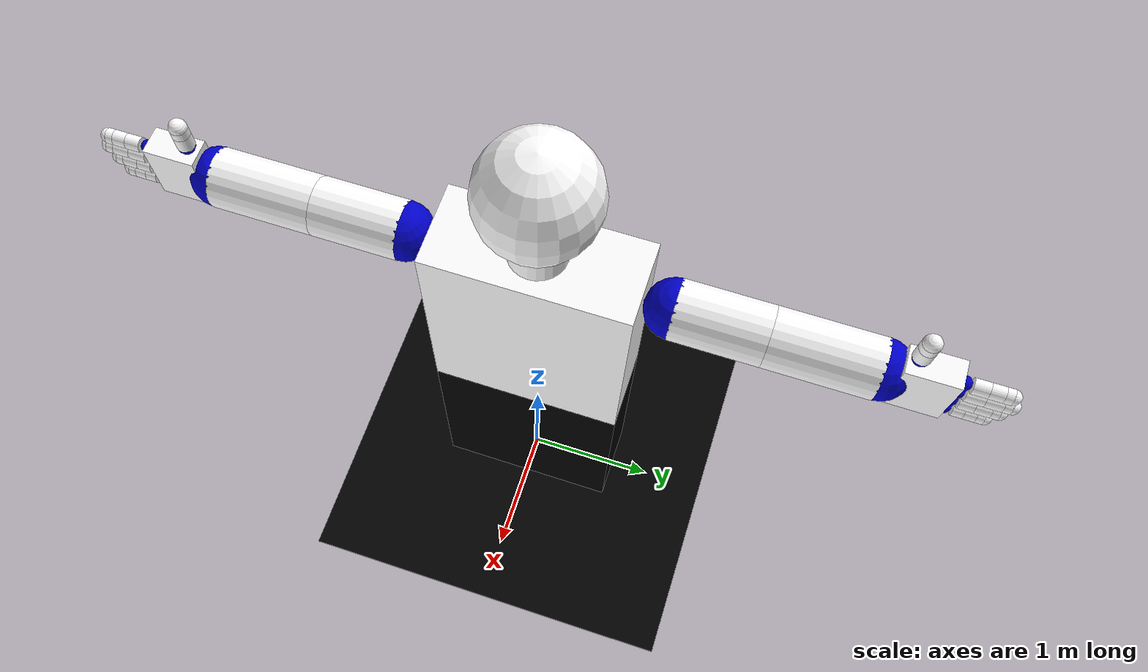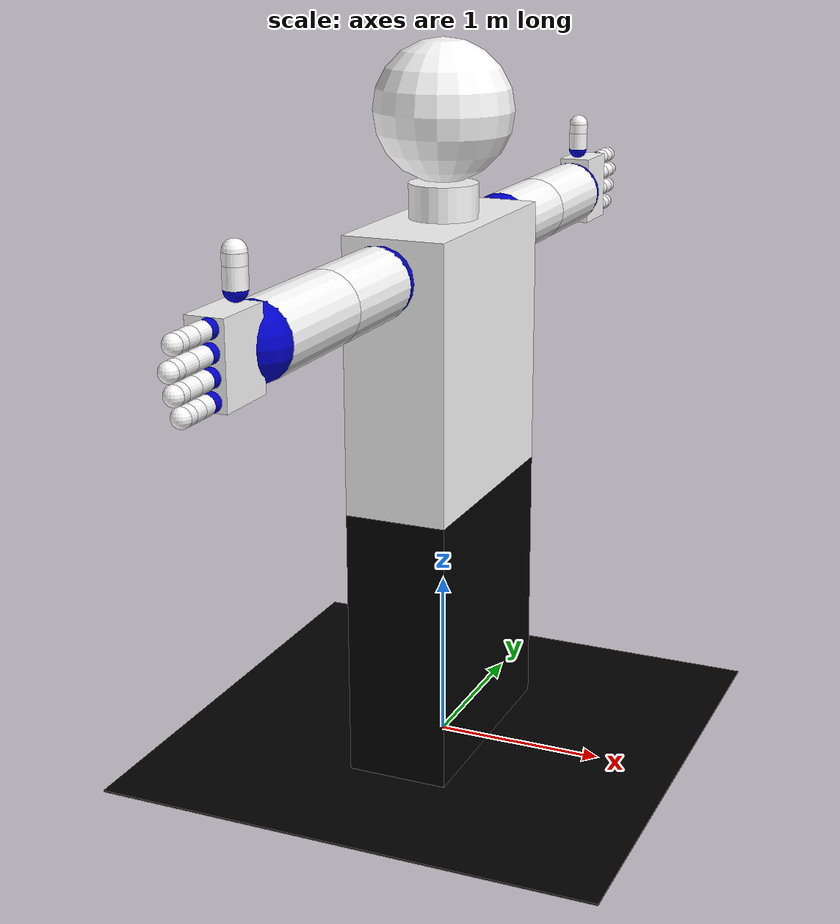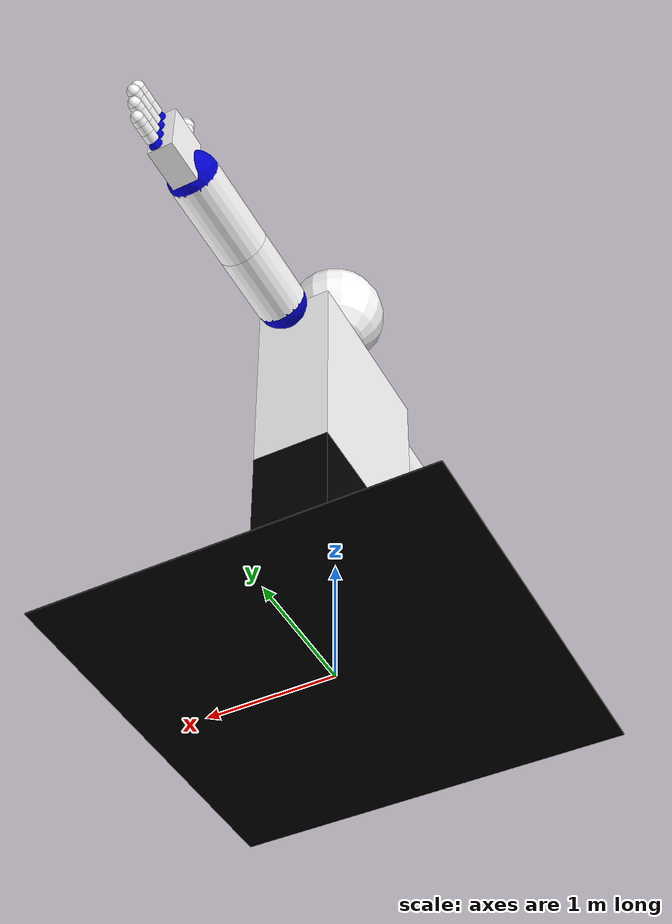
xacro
<?xml version="1.0"?>

<robot name="signbot_full" xmlns:xacro="http://www.ros.org/wiki/xacro" >
	<xacro:include filename="$(find signbot_description)/urdf/signbot_full_macros.xacro" />

<!-- /////////		MODEL		////////////////////////// -->
<!-- base link  This link is the base of the model -->
  <link name="base_link">

    <visual>
      <origin xyz="0 0 0" rpy="0 0 0" />
      <geometry>
	       <box size="3 3 0.01" />
      </geometry>
      <material name="Black" />
    </visual>

    <collision>
      <origin xyz="0 0 0" rpy="0 0 0" />
      <geometry>
	       <box size="3 3 0.01" />
      </geometry>
      </collision>
  </link>

  <gazebo reference="base_link">
    <material>Gazebo/Black</material>
  </gazebo>

 <joint name="bottom_joint" type="fixed">
    <origin xyz="0 0 0" rpy="0 0 0" />
    <parent link="base_link"/>
    <child link="legs_link"/>
  </joint>
<!-- legs -->
  <link name="legs_link">

    <visual>
      <origin xyz="0 0 ${TORSO_HEIGHT/2}" rpy="0 0 0" />
      <geometry>
	       <box size="${TORSO_DEPTH} ${TORSO_LENGTH} ${TORSO_HEIGHT}" />
      </geometry>
      <material name="Black" />
    </visual>

    <collision>
      <origin xyz="0 0 ${TORSO_HEIGHT/2}" rpy="0 0 0" />
      <geometry>
	       <box size="${TORSO_DEPTH} ${TORSO_LENGTH} ${TORSO_HEIGHT}" />
      </geometry>
      </collision>
	<xacro:inertial_matrix mass="50"/>
  </link>

  <gazebo reference="legs_link">
    <material>Gazebo/Black</material>
  </gazebo>

<!-- torso LINK -->
  <xacro:link_shape name="torso_link" color="White">
	<origin xyz="0 0 ${TORSO_HEIGHT/2}" rpy="0 0 0" />
	<box size="${TORSO_DEPTH} ${TORSO_LENGTH} ${TORSO_HEIGHT}" />
  </xacro:link_shape>

  <gazebo reference="torso_link">
    <material>Gazebo/White</material>
  </gazebo>

 <joint name="waist_joint" type="fixed">
    <origin xyz="0 0 ${TORSO_HEIGHT}" rpy="0 0 0" />
    <parent link="legs_link"/>
    <child link="torso_link"/>
  </joint>

<!-- //////////////////	head	/////////////////// -->
<!-- neck -->
  <xacro:link_shape name="neck_link" color="White">
	<origin xyz="0 0 ${NECK_LENGTH/2}" rpy="0 0 0" />
	<cylinder radius="${NECK_RADIUS}" length="${NECK_LENGTH}"/>
  </xacro:link_shape>

  <gazebo reference="neck_link">
    <material>Gazebo/White</material>
  </gazebo>

 <joint name="neck_joint" type="fixed">
    <origin xyz="0 0 ${TORSO_HEIGHT}" rpy="0 0 0" />
    <parent link="torso_link"/>
    <child link="neck_link"/>
  </joint>

<!-- head  -->
  <xacro:link_shape name="head_link" color="White">
	<origin xyz="0 0 ${HEAD_RADIUS}" rpy="0 0 0" />
	<sphere radius="${HEAD_RADIUS}"/>
  </xacro:link_shape>

  <gazebo reference="head_link">
    <material>Gazebo/White</material>
  </gazebo>

 <joint name="head_joint" type="fixed">
    <origin xyz="0 0 ${NECK_LENGTH}" rpy="0 0 0" />
    <parent link="neck_link"/>
    <child link="head_link"/>
  </joint>

<!-- ////////////////// right side /////////////// -->
<!-- arm -->
  <xacro:arm side="r"
	     axis_y_signal="-1"
	     lower="0"
	     upper="1" />

<!-- hand -->
  <xacro:hand side="r"
	      axis_y_signal="-1" />
<!-- thumb -->
  <xacro:thumb_finger side="r"
		      axis_y_signal="-1"
		      lower="0"
		      upper="1" />

<!--	FOUR FINGERS	(INDEX, MIDDLE, THIRD, LITTLE)-->
  <xacro:generic_finger name= "index"
			side="r"
			axis_y_signal="-1"
		      	lower="0"
		     	upper="1"
			ref_point="${(PALM_LENGTH/2)-GENERIC_FINGERS_RADIUS}"
			bottom_length="${INDEX_BOTTOM_LENGTH}"
			middle_length="${INDEX_MIDDLE_LENGTH}"
			top_length="${INDEX_TOP_LENGTH}" />

  <xacro:generic_finger name= "middle"
			side="r"
			axis_y_signal="-1"
		      	lower="0"
		     	upper="1"
			ref_point="${(PALM_LENGTH/2)-GENERIC_FINGERS_RADIUS*3-INTERVAL_BETWEEN_FINGERS}"
			bottom_length="${MIDDLE_BOTTOM_LENGTH}"
			middle_length="${MIDDLE_MIDDLE_LENGTH}"
			top_length="${MIDDLE_TOP_LENGTH}" />

  <xacro:generic_finger name= "third"
			side="r"
			axis_y_signal="-1"
		      	lower="0"
		     	upper="1"
			ref_point="${(PALM_LENGTH/2)-GENERIC_FINGERS_RADIUS*5-INTERVAL_BETWEEN_FINGERS*2}"
			bottom_length="${THIRD_BOTTOM_LENGTH}"
			middle_length="${THIRD_MIDDLE_LENGTH}"
			top_length="${THIRD_TOP_LENGTH}" />

  <xacro:generic_finger name= "little"
			side="r"
			axis_y_signal="-1"
		      	lower="0"
		     	upper="1"
			ref_point="${(PALM_LENGTH/2)-GENERIC_FINGERS_RADIUS*7-INTERVAL_BETWEEN_FINGERS*3}"
			bottom_length="${LITTLE_BOTTOM_LENGTH}"
			middle_length="${LITTLE_MIDDLE_LENGTH}"
			top_length="${LITTLE_TOP_LENGTH}" />

<!-- ////////////////// left side /////////////// -->
<!-- arm -->
  <xacro:arm side="l"
	     axis_y_signal="1"
	     lower="1"
	     upper="0" />
<!-- hand -->
  <xacro:hand side="l"
	      axis_y_signal="1" />
<!-- thumb -->
  <xacro:thumb_finger side="l"
		      axis_y_signal="1"
		      lower="1"
		      upper="0" />
<!--	FOUR FINGERS	(INDEX, MIDDLE, THIRD, LITTLE) -->

  <xacro:generic_finger name= "index"
			side="l"
			axis_y_signal="1"
		      	lower="1"
		     	upper="0"
			ref_point="${(PALM_LENGTH/2)-GENERIC_FINGERS_RADIUS}"
			bottom_length="${INDEX_BOTTOM_LENGTH}"
			middle_length="${INDEX_MIDDLE_LENGTH}"
			top_length="${INDEX_TOP_LENGTH}" />

  <xacro:generic_finger name= "middle"
			side="l"
			axis_y_signal="1"
		      	lower="1"
		     	upper="0"
			ref_point="${(PALM_LENGTH/2)-GENERIC_FINGERS_RADIUS*3-INTERVAL_BETWEEN_FINGERS}"
			bottom_length="${MIDDLE_BOTTOM_LENGTH}"
			middle_length="${MIDDLE_MIDDLE_LENGTH}"
			top_length="${MIDDLE_TOP_LENGTH}" />

  <xacro:generic_finger name= "third"
			side="l"
			axis_y_signal="1"
		      	lower="1"
		     	upper="0"
			ref_point="${(PALM_LENGTH/2)-GENERIC_FINGERS_RADIUS*5-INTERVAL_BETWEEN_FINGERS*2}"
			bottom_length="${THIRD_BOTTOM_LENGTH}"
			middle_length="${THIRD_MIDDLE_LENGTH}"
			top_length="${THIRD_TOP_LENGTH}" />

  <xacro:generic_finger name= "little"
			side="l"
			axis_y_signal="1"
		      	lower="1"
		     	upper="0"
			ref_point="${(PALM_LENGTH/2)-GENERIC_FINGERS_RADIUS*7-INTERVAL_BETWEEN_FINGERS*3}"
			bottom_length="${LITTLE_BOTTOM_LENGTH}"
			middle_length="${LITTLE_MIDDLE_LENGTH}"
			top_length="${LITTLE_TOP_LENGTH}" />

<!-- /////////////////	END MODEL	//////////////////////// -->

</robot>

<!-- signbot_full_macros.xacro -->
<robot xmlns:xacro="http://www.ros.org/wiki/xacro">
<xacro:include filename="$(find signbot_description)/urdf/signbot_generic_macros.xacro" />

<!-- Constants -->
  <property name="TOLERANCE" value="0.001" />
<!-- arm link properties -->
  <property name="ARM_RADIUS" value="0.2" />
  <property name="ARM_TOP_LENGTH" value="0.6" />
  <property name="ARM_BOTTOM_LENGTH" value="0.7" />
<!-- wrist link properties -->
  <property name="WRIST_RADIUS" value="${ARM_RADIUS}" />
<!-- palm link properties -->
  <property name="PALM_DEPTH" value="${WRIST_RADIUS}" />
  <property name="PALM_LENGTH" value="0.43"/>
  <property name="PALM_HEIGHT" value="0.35"/>
<!-- thumb finger properties -->
  <property name="THUMB_RADIUS" value="0.06" />
  <property name="THUMB_BOTTOM_LENGTH" value="0.11" />
  <property name="THUMB_TOP_LENGTH" value="${THUMB_RADIUS}" />
<!-- generic fingers properties -->
  <property name="GENERIC_FINGERS_RADIUS" value="0.05" />
  <property name="GENERIC_FINGERS_X" value="0.027" />
  <property name="INTERVAL_BETWEEN_FINGERS" value="0.01" />
<!-- index finger properties -->
  <property name="INDEX_BOTTOM_LENGTH" value="0.1" />
  <property name="INDEX_MIDDLE_LENGTH" value="0.09" />
  <property name="INDEX_TOP_LENGTH" value="${GENERIC_FINGERS_RADIUS}" />
<!--  middle finger properties  -->
  <property name="MIDDLE_BOTTOM_LENGTH" value="0.12" />
  <property name="MIDDLE_MIDDLE_LENGTH" value="0.11" />
  <property name="MIDDLE_TOP_LENGTH" value="${GENERIC_FINGERS_RADIUS}" />
<!--  third finger properties  -->
  <property name="THIRD_BOTTOM_LENGTH" value="0.1" />
  <property name="THIRD_MIDDLE_LENGTH" value="0.1" />
  <property name="THIRD_TOP_LENGTH" value="${GENERIC_FINGERS_RADIUS}" />
<!--  little finger properties  -->
  <property name="LITTLE_BOTTOM_LENGTH" value="0.075" />
  <property name="LITTLE_MIDDLE_LENGTH" value="0.075" />
  <property name="LITTLE_TOP_LENGTH" value="${GENERIC_FINGERS_RADIUS}" />

<!-- 	//////////////////	ARMS		/////////////////// -->
<xacro:macro name="arm" params="side axis_y_signal lower upper">

  <!-- SHOULDER PAN LINK -->
  <xacro:link_shape name="${side}_shoulder_link" color="Blue">
	<origin xyz="0 0 0" rpy="0 0 0" />
	<sphere radius="${ARM_RADIUS}"/>
  </xacro:link_shape>

  <gazebo reference="${side}_shoulder_link">
    <material>Gazebo/Blue</material>
  </gazebo>

  <joint name="${side}_shoulder_joint" type="revolute">
    <parent link="torso_link"/>
    <child link="${side}_shoulder_link"/>
    <origin xyz="0 ${axis_y_signal*((TORSO_LENGTH/2)+ARM_RADIUS)} ${TORSO_HEIGHT-ARM_RADIUS}"/>
    <axis xyz="0 1 0"/>
    <limit effort="1000.0" lower="-${PI/2}" upper="${PI/2}" velocity="0.5"/>
    <dynamics damping="50" friction="1"/>
  </joint>

<!-- TOP ARM  -->
  <xacro:link_shape name="${side}_top_arm_link" color="White">
	<origin rpy="${PI/2} 0 0" xyz="0 ${axis_y_signal*(ARM_TOP_LENGTH/2)} 0"/>
	<cylinder radius="${ARM_RADIUS}" length="${ARM_TOP_LENGTH}"/>
  </xacro:link_shape>

  <gazebo reference="${side}_top_arm_link">
    <material>Gazebo/White</material>
  </gazebo>

  <joint name="${side}_top_arm_joint" type="revolute">
    <parent link="${side}_shoulder_link"/>
    <child link="${side}_top_arm_link"/>
    <origin xyz="0 0 0"/>
    <axis xyz="0 0 1"/>
    <limit effort="1000.0" lower="${lower*(-1*(PI/2))}" upper="${upper*(PI/2)}" velocity="0.5"/>
    <dynamics damping="50" friction="1"/>
  </joint>

<!-- bottom arm -->
  <xacro:link_shape name="${side}_bottom_arm_link" color="White">
	 <origin rpy="${PI/2} 0 0" xyz="-${ARM_RADIUS} ${axis_y_signal*(ARM_BOTTOM_LENGTH/2)} 0"/>
	 <cylinder radius="${ARM_RADIUS}" length="${ARM_BOTTOM_LENGTH}"/>
  </xacro:link_shape>

  <gazebo reference="${side}_bottom_arm_link">
    <material>Gazebo/White</material>
  </gazebo>

  <joint name="${side}_elbow_joint" type="revolute">
    <parent link="${side}_top_arm_link"/>
    <child link="${side}_bottom_arm_link"/>
    <origin xyz="${ARM_RADIUS} ${axis_y_signal*(ARM_TOP_LENGTH)} 0"/>
    <axis xyz="0 0 1"/>
    <limit effort="1000.0" lower="${lower*(-1)*(PI-0.4)}" upper="${upper*(PI-0.4)}" velocity="0.5"/>
    <dynamics damping="50" friction="1"/>
  </joint>

<!--///	TRANSMICION ROS CONTROL	/// -->
	<xacro:transmission_block joint_name="${side}_shoulder_joint"/>
	<xacro:transmission_block joint_name="${side}_top_arm_joint"/>
	<xacro:transmission_block joint_name="${side}_elbow_joint"/>

</xacro:macro>

<!--	//////////////////////	HANDS	//////////////////////// -->
<xacro:macro name="hand" params="side axis_y_signal">
<!-- wirst -->
  <xacro:link_shape name="${side}_wirst_l" color="Blue">
	<origin xyz="0 0 0" rpy="0 0 0" />
	<sphere radius="${WRIST_RADIUS}"/>
  </xacro:link_shape>

  <gazebo reference="${side}_wirst_l">
    <material>Gazebo/Blue</material>
  </gazebo>

  <joint name="${side}_wirst_j" type="revolute">
    <parent link="${side}_bottom_arm_link"/>
    <child link="${side}_wirst_l"/>
    <origin xyz="-${ARM_RADIUS} ${axis_y_signal*ARM_BOTTOM_LENGTH} 0"/>
    <axis xyz="1 0 0"/>
    <limit effort="1000.0" lower="-${PI/4}" upper="${PI/4}" velocity="0.5"/>
    <dynamics damping="50" friction="1"/>
  </joint>

<!-- PALM LINK -->
  <xacro:link_shape name="${side}_palm_l" color="White">
	<origin rpy="${PI/2} 0 0" xyz="0 ${axis_y_signal*0.17} 0 "/>
	<box size="${PALM_DEPTH} ${PALM_LENGTH} ${PALM_HEIGHT}"/>
  </xacro:link_shape>

  <gazebo reference="${side}_palm_l">
    <material>Gazebo/White</material>
  </gazebo>

  <joint name="${side}_upper_wirst_j" type="revolute">
    <parent link="${side}_wirst_l"/>
    <child link="${side}_palm_l"/>
    <origin xyz="0 ${axis_y_signal*0.10} 0"/>
    <axis xyz="0 0 1"/>
    <limit effort="1000.0" lower="-${PI/4}" upper="${PI/4}" velocity="0.5"/>
    <dynamics damping="50" friction="1"/>
  </joint>

<!--///	TRANSMICION ROS CONTROL	/// -->
   <xacro:transmission_block joint_name="${side}_wirst_j"/>
   <xacro:transmission_block joint_name="${side}_upper_wirst_j"/>

</xacro:macro>

<!--	///////		THUMB FINGER	///////	-->
<xacro:macro name="thumb_finger" params="side axis_y_signal lower upper ">
    <xacro:link_shape name="${side}_knuckle_bottom_thumb_l" color="Blue">
	<origin rpy="0 0 0" xyz="0 0 0"/>
	<sphere radius="${THUMB_RADIUS}" />
    </xacro:link_shape>

    <gazebo reference="${side}_knuckle_bottom_thumb_l">
      <material>Gazebo/Blue</material>
    </gazebo>

    <joint name="${side}_knuckle_bottom_thumb_j" type="revolute">
        <parent link="${side}_palm_l"/>
        <child link="${side}_knuckle_bottom_thumb_l"/>
        <origin xyz="0 ${axis_y_signal*THUMB_RADIUS} ${(PALM_LENGTH/2)+THUMB_RADIUS+TOLERANCE}" />
	<axis xyz="1 0 0"/>
	<limit effort="1000.0" lower="-${lower*(PI/2)}" upper="${upper*(PI/2)}" velocity="0.5"/>
	<dynamics damping="50" friction="1"/>
    </joint>

    <xacro:link_shape name="${side}_bottom_thumb_l" color="White">
	<origin rpy="0 0 0" xyz="0 0 ${THUMB_BOTTOM_LENGTH/2}"/>
	<cylinder radius="${THUMB_RADIUS}" length="${THUMB_BOTTOM_LENGTH}"/>
    </xacro:link_shape>

    <gazebo reference="${side}_bottom_thumb_l">
      <material>Gazebo/White</material>
    </gazebo>

    <joint name="${side}_knuckle_upper_thumb_j" type="revolute">
        <parent link="${side}_knuckle_bottom_thumb_l"/>
        <child link="${side}_bottom_thumb_l"/>
    	<origin xyz="0 0 0"/>
    	<axis xyz="0 1 0"/>
    	<limit effort="1000.0" lower="0" upper="${PI/2}" velocity="0.5"/>
    	<dynamics damping="50" friction="1"/>
    </joint>

    <xacro:link_shape name="${side}_middle_thumb_l" color="White">
	<origin rpy="0 0 0" xyz="0 ${-1*axis_y_signal*THUMB_RADIUS} ${THUMB_TOP_LENGTH/2}"/>
	<cylinder radius="${THUMB_RADIUS}" length="${THUMB_TOP_LENGTH}"/>
    </xacro:link_shape>

    <gazebo reference="${side}_middle_thumb_l">
      <material>Gazebo/White</material>
    </gazebo>

    <joint name="${side}_middle_thumb_j" type="revolute">
        <parent link="${side}_bottom_thumb_l"/>
        <child link="${side}_middle_thumb_l"/>
    	<origin xyz="0 ${axis_y_signal*THUMB_RADIUS} ${THUMB_BOTTOM_LENGTH}"/>
    	<axis xyz="1 0 0"/>
    	<limit effort="1000.0" lower="-${lower*(PI/2)}" upper="${upper*(PI/2)}" velocity="0.5"/>
    	<dynamics damping="50" friction="1"/>
    </joint>

    <xacro:link_shape name="${side}_top_thumb_l" color="White">
	<origin rpy="0 0 0" xyz="0 0 0"/>
	<sphere radius="${THUMB_RADIUS}"/>
    </xacro:link_shape>

    <gazebo reference="${side}_top_thumb_l">
      <material>Gazebo/White</material>
    </gazebo>

    <joint name="${side}_top_thumb_j" type="fixed">
        <parent link="${side}_middle_thumb_l"/>
        <child link="${side}_top_thumb_l"/>
    	<origin xyz="0 ${-1*axis_y_signal*0.06} 0.06"/>
    </joint>

<!--///	TRANSMICION ROS CONTROL	/// -->
   <xacro:transmission_block joint_name="${side}_knuckle_bottom_thumb_j"/>
   <xacro:transmission_block joint_name="${side}_knuckle_upper_thumb_j"/>
   <xacro:transmission_block joint_name="${side}_middle_thumb_j"/>

</xacro:macro>

<xacro:macro name="generic_finger"
	params="name side axis_y_signal lower upper ref_point bottom_length middle_length top_length">
    <xacro:link_shape name="${side}_knuckle_bottom_${name}_l" color="Blue">
	<origin rpy="0 0 0" xyz="0 0 0"/>
	<sphere radius="${GENERIC_FINGERS_RADIUS}" />
    </xacro:link_shape>

    <gazebo reference="${side}_knuckle_bottom_${name}_l">
      <material>Gazebo/Blue</material>
    </gazebo>

    <joint name="${side}_knuckle_bottom_${name}_j" type="revolute">
        <parent link="${side}_palm_l"/>
        <child link="${side}_knuckle_bottom_${name}_l"/>
        <origin xyz="${GENERIC_FINGERS_X} ${axis_y_signal*PALM_HEIGHT} ${ref_point}"/>
    	<axis xyz="0 0 1"/>
    	<limit effort="1000.0" lower="-${lower*(PI/2)}" upper="${upper*(PI/2)}" velocity="0.5"/>
    	<dynamics damping="50" friction="1"/>
    </joint>

    <xacro:link_shape name="${side}_bottom_${name}_l" color="White">
	<origin rpy="${PI/2} 0 0" xyz="0 ${axis_y_signal*(bottom_length/2)} 0"/>
	<cylinder radius="${GENERIC_FINGERS_RADIUS}" length="${bottom_length}"/>
    </xacro:link_shape>

    <gazebo reference="${side}_bottom_${name}_l">
      <material>Gazebo/White</material>
    </gazebo>

    <joint name="${side}_knuckle_upper_${name}_j" type="fixed">
        <parent link="${side}_knuckle_bottom_${name}_l"/>
        <child link="${side}_bottom_${name}_l"/>
    	<origin xyz="0 ${axis_y_signal*GENERIC_FINGERS_RADIUS} 0"/>
    </joint>

    <xacro:link_shape name="${side}_middle_${name}_l" color="White">
	<origin rpy="${PI/2} 0 0" xyz="-${GENERIC_FINGERS_RADIUS} ${axis_y_signal*middle_length/2} 0"/>
	<cylinder radius="${GENERIC_FINGERS_RADIUS}" length="${middle_length}"/>
    </xacro:link_shape>

    <gazebo reference="${side}_middle_${name}_l">
      <material>Gazebo/White</material>
    </gazebo>

    <joint name="${side}_middle_${name}_j" type="revolute">
        <parent link="${side}_bottom_${name}_l"/>
        <child link="${side}_middle_${name}_l"/>
    	<origin xyz="${GENERIC_FINGERS_RADIUS} ${axis_y_signal*bottom_length} 0"/>
    	<axis xyz="0 0 1"/>
    <limit effort="1000.0" lower="-${lower*(PI/2)}" upper="${upper*(PI/2)}" velocity="0.5"/>
    <dynamics damping="50" friction="1"/>
    </joint>

    <xacro:link_shape name="${side}_top_${name}_l" color="White">
	<origin rpy="${PI/2} 0 0" xyz="-${GENERIC_FINGERS_RADIUS} ${axis_y_signal*(top_length/2)} 0"/>
	<cylinder radius="${GENERIC_FINGERS_RADIUS}" length="${top_length}"/>
    </xacro:link_shape>

    <gazebo reference="${side}_top_${name}_l">
      <material>Gazebo/White</material>
    </gazebo>

    <joint name="${side}_top_${name}_j" type="revolute">
        <parent link="${side}_middle_${name}_l"/>
        <child link="${side}_top_${name}_l"/>
    	<origin xyz="0 ${axis_y_signal*middle_length} 0"/>
    	<axis xyz="0 0 1"/>
   	<limit effort="1000.0" lower="-${lower*(PI/2)}" upper="${upper*(PI/2)}" velocity="0.5"/>
    	<dynamics damping="50" friction="1"/>
    </joint>

    <xacro:link_shape name="${side}_toptop_${name}_l" color="White">
	<origin rpy="0 0 0" xyz="0 0 0"/>
	<sphere radius="${GENERIC_FINGERS_RADIUS}"/>
    </xacro:link_shape>

    <gazebo reference="${side}_toptop_${name}_l">
      <material>Gazebo/White</material>
    </gazebo>

    <joint name="${side}_toptop_${name}_j" type="fixed">
        <parent link="${side}_top_${name}_l"/>
        <child link="${side}_toptop_${name}_l"/>
    	<origin xyz="-${GENERIC_FINGERS_RADIUS} ${axis_y_signal*GENERIC_FINGERS_RADIUS} 0"/>
    </joint>

<!--///	TRANSMICION ROS CONTROL	/// -->
   <xacro:transmission_block joint_name="${side}_knuckle_bottom_${name}_j"/>
   <xacro:transmission_block joint_name="${side}_middle_${name}_j"/>
   <xacro:transmission_block joint_name="${side}_top_${name}_j"/>

</xacro:macro>

</robot>

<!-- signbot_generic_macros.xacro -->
<robot xmlns:xacro="http://www.ros.org/wiki/xacro">

<!-- COLORS -->
    <material name="Black">
        <color rgba="0.0 0.0 0.0 1.0"/>
    </material>

    <material name="Red">
        <color rgba="0.8 0.0 0.0 1.0"/>
    </material>

    <material name="White">
        <color rgba="1.0 1.0 1.0 1.0"/>
    </material>

    <material name="Cyan">
	<color rgba="0 1 1 1"/>
    </material>

    <material name="Yellow">
	<color rgba="1 1 0 1"/>
    </material>

    <material name="Green">
	<color rgba="0 1 0 1"/>
    </material>

    <material name="Blue">
	<color rgba="0 0 .8 1"/>
    </material>

    <material name="Silver">
	<color rgba="0.75 0.75 0.75 1"/>
     </material>

<!-- Generic Constants -->

  <property name="PI" value="3.14159"/>

<!-- Torso Constants -->
  <property name="TORSO_DEPTH" value="0.6" />
  <property name="TORSO_LENGTH" value="1.4"/>
  <property name="TORSO_HEIGHT" value="1.6"/>

<!-- Neck constants -->
  <property name="NECK_RADIUS" value="0.2" />
  <property name="NECK_LENGTH" value="0.2"/>

<!-- head constants -->

  <property name="HEAD_RADIUS" value="0.4"/>

<!-- Blocks of code -->

   <xacro:macro name="inertial_matrix" params="mass">
      <inertial>
      	<mass value="${mass}" />
        <inertia ixx="1.0" ixy="0.0" ixz="0.0" iyy="0.5" iyz="0.0" izz="1.0" />
      </inertial>
   </xacro:macro>

   <xacro:macro name="transmission_block" params="joint_name">
	  <transmission name="tran1">
	    <type>transmission_interface/SimpleTransmission</type>
	    <joint name="${joint_name}">
	      <hardwareInterface>PositionJointInterface</hardwareInterface>
	    </joint>
	    <actuator name="motor1">
	      <hardwareInterface>PositionJointInterface</hardwareInterface>
	      <mechanicalReduction>1</mechanicalReduction>
	    </actuator>
	  </transmission>
   </xacro:macro>

<!--	////////	LINK SHAPES	////////	-->
<xacro:macro name="link_shape" params="name color *origin *shape">
    <link name="${name}">
        <visual>
	   <xacro:insert_block name="origin" />
            <geometry>
                <xacro:insert_block name="shape" />
            </geometry>
            <material name="${color}" />
        </visual>
        <collision>
	   <xacro:insert_block name="origin" />
            <geometry>
                <xacro:insert_block name="shape" />
            </geometry>
        </collision>
	<xacro:inertial_matrix mass="1"/>
    </link>
</xacro:macro>

  <!-- ros_control plugin -->
  <gazebo>
    <plugin name="gazebo_ros_control" filename="libgazebo_ros_control.so">
	      <robotNamespace>/signbot</robotNamespace>
    </plugin>
  </gazebo>

</robot>
